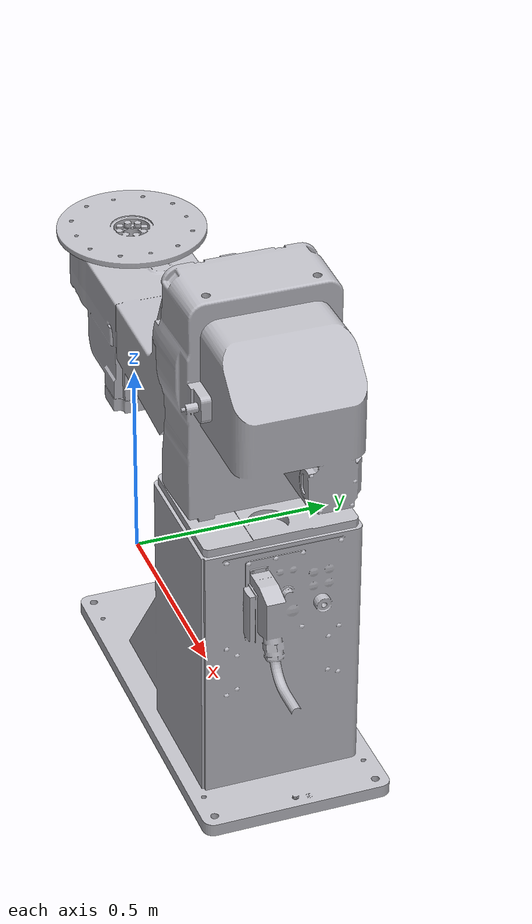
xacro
<?xml version="1.0" ?>
<robot name="Irbpa-250_D1000_IRC5_rev02_CAD" xmlns:xacro="http://www.ros.org/wiki/xacro">

<xacro:include filename="$(find Irbpa-250_D1000_IRC5_rev02_CAD_description)/urdf/materials.xacro" />
<xacro:include filename="$(find Irbpa-250_D1000_IRC5_rev02_CAD_description)/urdf/Irbpa-250_D1000_IRC5_rev02_CAD.trans" />
<xacro:include filename="$(find Irbpa-250_D1000_IRC5_rev02_CAD_description)/urdf/Irbpa-250_D1000_IRC5_rev02_CAD.gazebo" />
<link name="base_link">
  <inertial>
    <origin xyz="0.8285107796272847 0.0012219899578449352 0.5370026604000335" rpy="0 0 0"/>
    <mass value="1106.0690804578326"/>
    <inertia ixx="159.054625" iyy="166.987389" izz="32.2919" ixy="-0.172279" iyz="-0.474836" ixz="-14.206829"/>
  </inertial>
  <visual>
    <origin xyz="0 0 0" rpy="0 0 0"/>
    <geometry>
      <mesh filename="package://Irbpa-250_D1000_IRC5_rev02_CAD_description/meshes/base_link.stl" scale="0.001 0.001 0.001"/>
    </geometry>
    <material name="silver"/>
  </visual>
  <collision>
    <origin xyz="0 0 0" rpy="0 0 0"/>
    <geometry>
      <mesh filename="package://Irbpa-250_D1000_IRC5_rev02_CAD_description/meshes/base_link.stl" scale="0.001 0.001 0.001"/>
    </geometry>
  </collision>
</link>

<link name="Irbpa-250_D1000_IRC5_rev02_Arm250AB_CAD_1">
  <inertial>
    <origin xyz="-0.48798652287282596 -0.002958286618985653 -0.23701597438616928" rpy="0 0 0"/>
    <mass value="217.74567622168203"/>
    <inertia ixx="5.18673" iyy="17.406649" izz="14.435722" ixy="-0.024266" iyz="-0.115807" ixz="-5.50859"/>
  </inertial>
  <visual>
    <origin xyz="-0.6825 -0.0 -1.02" rpy="0 0 0"/>
    <geometry>
      <mesh filename="package://Irbpa-250_D1000_IRC5_rev02_CAD_description/meshes/Irbpa-250_D1000_IRC5_rev02_Arm250AB_CAD_1.stl" scale="0.001 0.001 0.001"/>
    </geometry>
    <material name="silver"/>
  </visual>
  <collision>
    <origin xyz="-0.6825 -0.0 -1.02" rpy="0 0 0"/>
    <geometry>
      <mesh filename="package://Irbpa-250_D1000_IRC5_rev02_CAD_description/meshes/Irbpa-250_D1000_IRC5_rev02_Arm250AB_CAD_1.stl" scale="0.001 0.001 0.001"/>
    </geometry>
  </collision>
</link>

<link name="Irbpa-250_D1000_IRC5_rev02_platter_d350_CAD_1">
  <inertial>
    <origin xyz="-0.0004051961273977961 1.0394628322001757e-08 0.02809458902719031" rpy="0 0 0"/>
    <mass value="9.835889620455225"/>
    <inertia ixx="0.066765" iyy="0.067076" izz="0.131981" ixy="-0.0" iyz="0.0" ixz="-9.3e-05"/>
  </inertial>
  <visual>
    <origin xyz="0.0 -0.0 -0.8615" rpy="0 0 0"/>
    <geometry>
      <mesh filename="package://Irbpa-250_D1000_IRC5_rev02_CAD_description/meshes/Irbpa-250_D1000_IRC5_rev02_platter_d350_CAD_1.stl" scale="0.001 0.001 0.001"/>
    </geometry>
    <material name="silver"/>
  </visual>
  <collision>
    <origin xyz="0.0 -0.0 -0.8615" rpy="0 0 0"/>
    <geometry>
      <mesh filename="package://Irbpa-250_D1000_IRC5_rev02_CAD_description/meshes/Irbpa-250_D1000_IRC5_rev02_platter_d350_CAD_1.stl" scale="0.001 0.001 0.001"/>
    </geometry>
  </collision>
</link>

<joint name="j1" type="continuous">
  <origin xyz="0.6825 0.0 1.02" rpy="0 0 0"/>
  <parent link="base_link"/>
  <child link="Irbpa-250_D1000_IRC5_rev02_Arm250AB_CAD_1"/>
  <axis xyz="-1.0 -0.0 -0.0"/>
</joint>

<joint name="j2" type="continuous">
  <origin xyz="-0.6825 0.0 -0.1585" rpy="0 0 0"/>
  <parent link="Irbpa-250_D1000_IRC5_rev02_Arm250AB_CAD_1"/>
  <child link="Irbpa-250_D1000_IRC5_rev02_platter_d350_CAD_1"/>
  <axis xyz="-0.0 0.0 1.0"/>
</joint>

</robot>

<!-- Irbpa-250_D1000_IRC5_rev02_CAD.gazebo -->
<robot name="Irbpa-250_D1000_IRC5_rev02_CAD" xmlns:xacro="http://www.ros.org/wiki/xacro" >

<xacro:property name="body_color" value="Gazebo/Silver" />

<gazebo>
  <plugin name="control" filename="libgazebo_ros_control.so"/>
</gazebo>
<gazebo reference="base_link">
  <material>${body_color}</material>
  <mu1>0.2</mu1>
  <mu2>0.2</mu2>
  <selfCollide>true</selfCollide>
  <gravity>true</gravity>
</gazebo>

<gazebo reference="Irbpa-250_D1000_IRC5_rev02_Arm250AB_CAD_1">
  <material>${body_color}</material>
  <mu1>0.2</mu1>
  <mu2>0.2</mu2>
  <selfCollide>true</selfCollide>
</gazebo>

<gazebo reference="Irbpa-250_D1000_IRC5_rev02_platter_d350_CAD_1">
  <material>${body_color}</material>
  <mu1>0.2</mu1>
  <mu2>0.2</mu2>
  <selfCollide>true</selfCollide>
</gazebo>

</robot>
